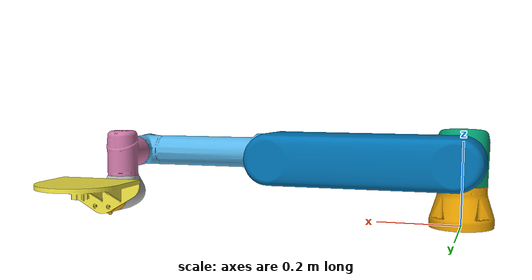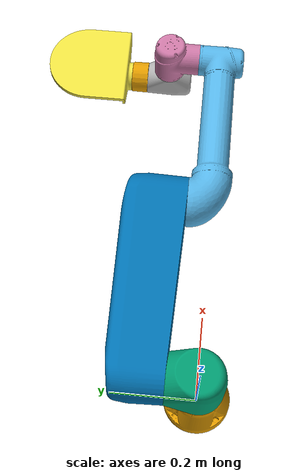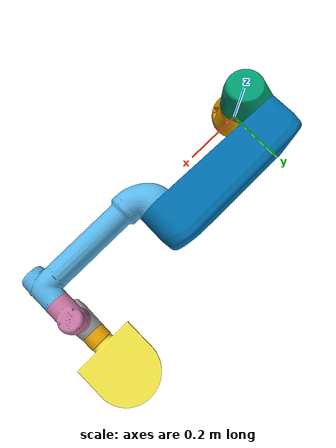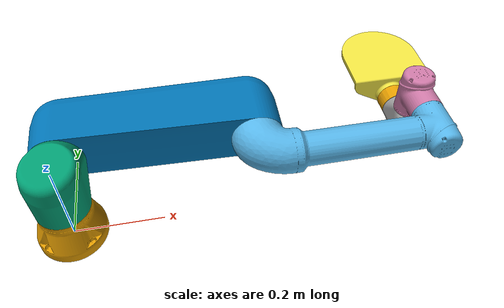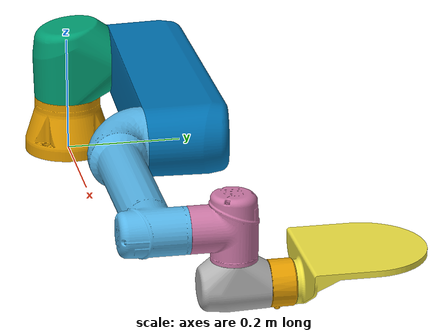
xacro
<?xml version="1.0" encoding="UTF-8"?>
<robot name="ur5eTray"  xmlns:xacro="http://www.ros.org/wiki/xacro">

  <joint name="tray_joint" type="fixed">
    <origin xyz="-0. 0.05 0.1049999" rpy="-1.5707964 -1.5707963 0. "/>
    <parent link="wrist_3_link"/>
    <child link="tray"/>
  </joint>
  <joint name="elbow_joint" type="revolute">
    <origin xyz="-0.425 0. 0. " rpy="0. 0. 0."/>
    <parent link="upper_arm_link"/>
    <child link="forearm_link"/>
    <axis xyz="0. 0. 1."/>
    <limit lower="-3.1415927" upper="3.1415927" effort="150." velocity="3.1415927"/>
  </joint>
  <joint name="root_joint" type="fixed">
    <origin xyz="0. 0. 0." rpy="0. 0. 0."/>
    <parent link="ur5e"/>
    <child link="base_link"/>
  </joint>
  <joint name="shoulder_lift_joint" type="revolute">
    <origin xyz="0. 0. 0." rpy="1.5707964 0. 0. "/>
    <parent link="shoulder_link"/>
    <child link="upper_arm_link"/>
    <axis xyz="0. 0. 1."/>
    <limit lower="-6.2831853" upper="6.2831853" effort="150." velocity="3.1415927"/>
  </joint>
  <joint name="shoulder_pan_joint" type="revolute">
    <origin xyz="0. 0. 0.1625" rpy="0. 0. -3.1415925"/>
    <parent link="base_link"/>
    <child link="shoulder_link"/>
    <axis xyz="0. 0. 1."/>
    <limit lower="-6.2831853" upper="6.2831853" effort="150." velocity="3.1415927"/>
  </joint>
  <joint name="wrist_1_joint" type="revolute">
    <origin xyz="-0.3922 0. 0.1333" rpy="0. 0. 0."/>
    <parent link="forearm_link"/>
    <child link="wrist_1_link"/>
    <axis xyz="0. 0. 1."/>
    <limit lower="-6.2831853" upper="6.2831853" effort="28." velocity="3.1415927"/>
  </joint>
  <joint name="wrist_2_joint" type="revolute">
    <origin xyz="-0. -0.0997 -0. " rpy="1.5707964 0. 0. "/>
    <parent link="wrist_1_link"/>
    <child link="wrist_2_link"/>
    <axis xyz="0. 0. 1."/>
    <limit lower="-6.2831853" upper="6.2831853" effort="28." velocity="3.1415927"/>
  </joint>
  <joint name="wrist_3_joint" type="revolute">
    <origin xyz="0. 0.0996 -0. " rpy="-1.5707964 -0.0000001 0.0000001"/>
    <parent link="wrist_2_link"/>
    <child link="wrist_3_link"/>
    <axis xyz="0. 0. 1."/>
    <limit lower="-6.2831853" upper="6.2831853" effort="28." velocity="3.1415927"/>
  </joint>
  <link name="base_link">
    <inertial>
      <origin xyz="0. 0. 0." rpy="0. 0. 0."/>
      <mass value="4."/>
      <inertia ixx="0.0044333" ixy="0." ixz="0." iyy="0.0044333" iyz="0." izz="0.0072"/>
    </inertial>
    <visual>
      <origin xyz="0. 0. 0." rpy="1.5707872 0. 0. "/>
      <geometry>
        <mesh filename="file://$(find upright_assets)/ur5e/meshes/base_link_visuals_base_mesh.obj" scale="1. 1. 1."/>
      </geometry>
    </visual>
    <collision>
      <origin xyz="0. 0. 0." rpy="0. 0. 0."/>
      <geometry>
        <mesh filename="file://$(find upright_assets)/ur5e/meshes/base_link_collisions_base_mesh.obj" scale="1. 1. 1."/>
      </geometry>
    </collision>
  </link>
  <link name="forearm_link">
    <inertial>
      <origin xyz="-0.1961 0. 0.007 " rpy="0. 0. 0."/>
      <mass value="2.2750001"/>
      <inertia ixx="0.0312094" ixy="0." ixz="0." iyy="0.0312094" iyz="0." izz="0.004095"/>
    </inertial>
    <visual>
      <origin xyz="0. 0. 0.007" rpy="3.1415837 0. -1.5707964"/>
      <geometry>
        <mesh filename="file://$(find upright_assets)/ur5e/meshes/forearm_link_visuals_forearm_mesh.obj" scale="1. 1. 1."/>
      </geometry>
    </visual>
    <collision>
      <origin xyz="0. 0. 0.007" rpy="1.5707964 0. -1.5707964"/>
      <geometry>
        <mesh filename="file://$(find upright_assets)/ur5e/meshes/forearm_link_collisions_forearm_mesh.obj" scale="1. 1. 1."/>
      </geometry>
    </collision>
  </link>
  <link name="shoulder_link">
    <inertial>
      <origin xyz="0. 0. 0." rpy="0. 0. 0."/>
      <mass value="3.7"/>
      <inertia ixx="0.0102675" ixy="0." ixz="0." iyy="0.0102675" iyz="0." izz="0.00666"/>
    </inertial>
    <visual>
      <origin xyz="0. 0. 0." rpy="1.5707872 0. -3.1415925"/>
      <geometry>
        <mesh filename="file://$(find upright_assets)/ur5e/meshes/shoulder_link_visuals_shoulder_mesh.obj" scale="1. 1. 1."/>
      </geometry>
    </visual>
    <collision>
      <origin xyz="0. 0. 0." rpy="0. 0. -3.1415925"/>
      <geometry>
        <mesh filename="file://$(find upright_assets)/ur5e/meshes/shoulder_link_collisions_shoulder_mesh.obj" scale="1. 1. 1."/>
      </geometry>
    </collision>
  </link>
  <link name="tray">
    <inertial>
      <origin xyz="-0.0332617 -0.0000095 -0.0247041" rpy="0. 0. 0."/>
      <mass value="0.35"/>
      <inertia ixx="0.0009002" ixy="0.0000004" ixz="0.0001363" iyy="0.0009958" iyz="0.000002" izz="0.0016743"/>
    </inertial>
    <visual>
      <origin xyz="0. 0. 0." rpy="0. -0. 3.1415927"/>
      <geometry>
        <mesh filename="file://$(find upright_assets)/ur5e/meshes/tray_visuals_Tray_mesh.obj" scale="1. 1. 1."/>
      </geometry>
    </visual>
    <collision>
      <origin xyz="0. 0. 0." rpy="0. 0. -3.1415927"/>
      <geometry>
        <mesh filename="file://$(find upright_assets)/ur5e/meshes/tray_collisions_Tray_mesh.obj" scale="1. 1. 1."/>
      </geometry>
    </collision>
  </link>
  <link name="upper_arm_link">
    <inertial>
      <origin xyz="-0.2125 0. 0.138 " rpy="0. 0. 0."/>
      <mass value="8.3929996"/>
      <inertia ixx="0.1338858" ixy="0." ixz="0." iyy="0.1338858" iyz="0." izz="0.0151074"/>
    </inertial>
    <visual>
      <origin xyz="0. 0. 0.138" rpy="3.1415837 0. -1.5707964"/>
      <geometry>
        <mesh filename="file://$(find upright_assets)/ur5e/meshes/upper_arm_link_visuals_upperarm_mesh.obj" scale="1. 1. 1."/>
      </geometry>
    </visual>
    <collision>
      <origin xyz="0. 0. 0.138" rpy="1.5707964 0. -1.5707964"/>
      <geometry>
        <mesh filename="file://$(find upright_assets)/ur5e/meshes/upper_arm_link_collisions_upperarm_mesh.obj" scale="1. 1. 1."/>
      </geometry>
    </collision>
  </link>
  <link name="ur5e"/>
  <link name="wrist_1_link">
    <inertial>
      <origin xyz="0. 0. 0." rpy="0. 0. 0."/>
      <mass value="1.219"/>
      <inertia ixx="0.0025599" ixy="0." ixz="0." iyy="0.0025599" iyz="0." izz="0.0021942"/>
    </inertial>
    <visual>
      <origin xyz="-0. 0. -0.127" rpy="3.1415837 0. 0. "/>
      <geometry>
        <mesh filename="file://$(find upright_assets)/ur5e/meshes/wrist_1_link_visuals_wrist1_mesh.obj" scale="1. 1. 1."/>
      </geometry>
    </visual>
    <collision>
      <origin xyz="-0. 0. -0.127" rpy="1.5707964 0. 0. "/>
      <geometry>
        <mesh filename="file://$(find upright_assets)/ur5e/meshes/wrist_1_link_collisions_wrist1_mesh.obj" scale="1. 1. 1."/>
      </geometry>
    </collision>
  </link>
  <link name="wrist_2_link">
    <inertial>
      <origin xyz="0. 0. 0." rpy="0. 0. 0."/>
      <mass value="1.219"/>
      <inertia ixx="0.0025599" ixy="0." ixz="0." iyy="0.0025599" iyz="0." izz="0.0021942"/>
    </inertial>
    <visual>
      <origin xyz="0. 0. -0.0997" rpy="1.5707872 0. 0. "/>
      <geometry>
        <mesh filename="file://$(find upright_assets)/ur5e/meshes/wrist_2_link_visuals_wrist2_mesh.obj" scale="1. 1. 1."/>
      </geometry>
    </visual>
    <collision>
      <origin xyz="0. 0. -0.0997" rpy="0. 0. 0."/>
      <geometry>
        <mesh filename="file://$(find upright_assets)/ur5e/meshes/wrist_2_link_collisions_wrist2_mesh.obj" scale="1. 1. 1."/>
      </geometry>
    </collision>
  </link>
  <link name="wrist_3_link">
    <inertial>
      <origin xyz="0. 0. -0.0229" rpy="0. 0. 0."/>
      <mass value="0.1879"/>
      <inertia ixx="0.0000989" ixy="0." ixz="0." iyy="0.0000989" iyz="0." izz="0.0001321"/>
    </inertial>
    <visual>
      <origin xyz="-0. -0. -0.0989" rpy="3.1415837 0. 0. "/>
      <geometry>
        <mesh filename="file://$(find upright_assets)/ur5e/meshes/wrist_3_link_visuals_wrist3_mesh.obj" scale="1. 1. 1."/>
      </geometry>
    </visual>
    <collision>
      <origin xyz="-0. -0. -0.0989" rpy="1.5707964 0. 0. "/>
      <geometry>
        <mesh filename="file://$(find upright_assets)/ur5e/meshes/wrist_3_link_collisions_wrist3_mesh.obj" scale="1. 1. 1."/>
      </geometry>
    </collision>
  </link>
</robot>
